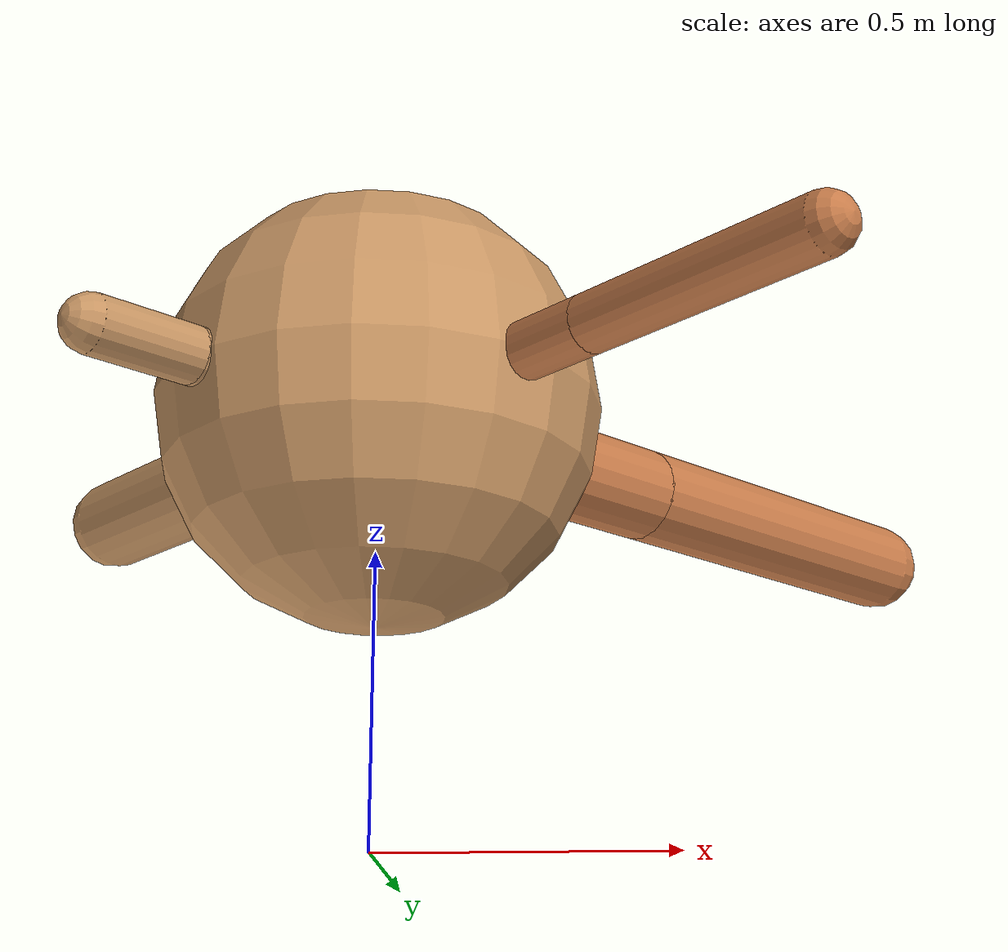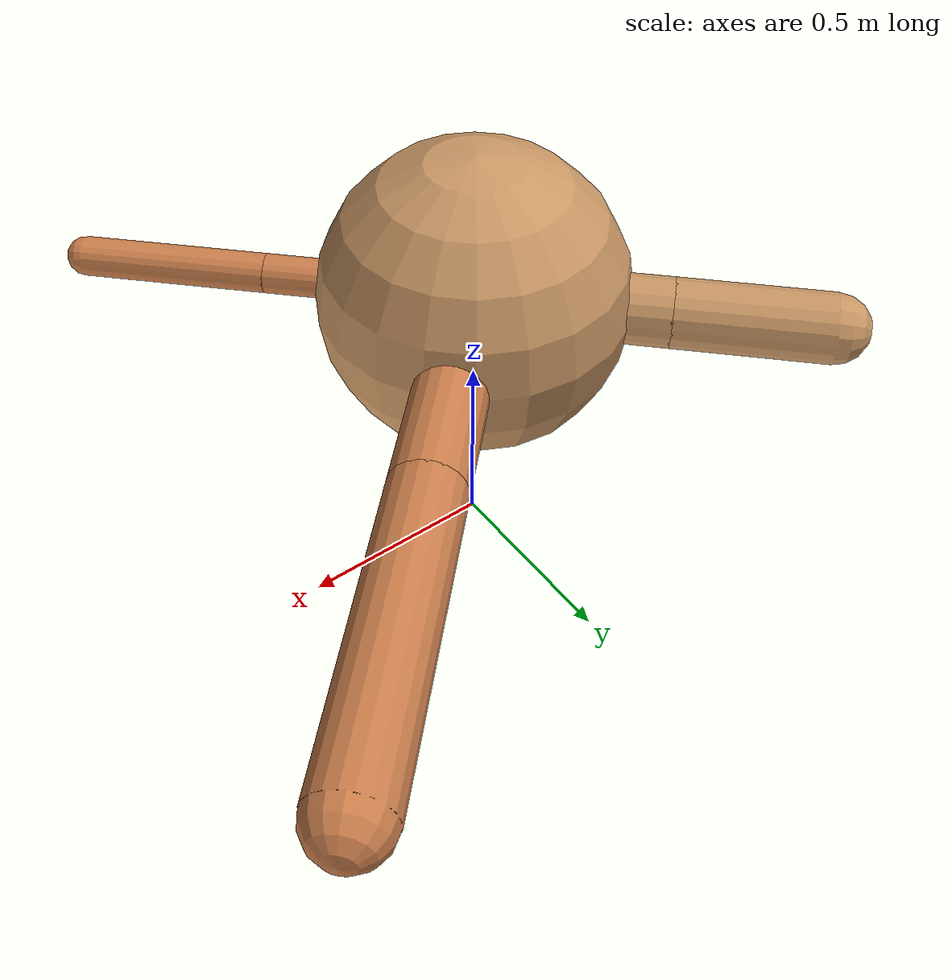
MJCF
<?xml version="1.0" ?>
<mujoco model="ant">

	<compiler angle="degree" coordinate="local" inertiafromgeom="true"/>

	<option integrator="RK4" timestep="0.01"/>

	<custom>

		<numeric data="0.0 0.0 0.55 1.0 0.0 0.0 0.0 0.0 1.0 0.0 -1.0 0.0 -1.0 0.0 1.0" name="init_qpos"/>

	</custom>

	<default>

		<joint armature="1" damping="1" limited="true"/>

		<geom conaffinity="0" condim="3" density="5.0" friction="1.5 0.1 0.1" margin="0.01" rgba="0.8 0.6 0.4 1"/>

	</default>

	<worldbody>

		<body name="torso" pos="0 0 0.75">

			<geom name="torso_geom" pos="0 0 0" size="0.3809115109678126" type="sphere"/>

			<!--joint armature="0" damping="0" limited="false" margin="0.01" name="root" pos="0 0 0" type="free"/-->

			<body name="front_left_leg" pos="0 0 0">

				<geom fromto="0 0 0 0.2 0.2 0" name="aux_1_geom" size="0.087155690770804" type="capsule" rgba=".8 .5 .3 1"/>

				<body name="aux_1" pos="0.2 0.2 0">

					<joint axis="0 0 1" name="hip_1" pos="0.0 0.0 0.0" range="-40 40" type="hinge"/>

					<geom fromto="0 0 0 0.25643127070412913 0.25643127070412913 0" name="left_leg_geom" size="0.087155690770804" type="capsule" rgba=".8 .5 .3 1"/>

					<body pos="0.25643127070412913 0.25643127070412913 0" name="front_left_foot">

						<joint axis="-1 1 0" name="ankle_1" pos="0.0 0.0 0.0" range="30 100" type="hinge"/>

						<geom fromto="0 0 0 0.5128625414082583 0.5128625414082583 0" name="left_ankle_geom" size="0.087155690770804" type="capsule" rgba=".8 .5 .3 1"/>

					</body>

				</body>

			</body>

			<body name="front_right_leg" pos="0 0 0">

				<geom fromto="0 0 0 -0.2 0.2 0" name="aux_2_geom" size="0.08536051379107676" type="capsule"/>

				<body name="aux_2" pos="-0.2 0.2 0">

					<joint axis="0 0 1" name="hip_2" pos="0.0 0.0 0.0" range="-40 40" type="hinge"/>

					<geom fromto="0 0 0 -0.13209087344625023 0.13209087344625023 0" name="right_leg_geom" size="0.08536051379107676" type="capsule"/>

					<body pos="-0.13209087344625023 0.13209087344625023 0" name="front_right_foot">

						<joint axis="1 1 0" name="ankle_2" pos="0.0 0.0 0.0" range="-100 -30" type="hinge"/>

						<geom fromto="0 0 0 -0.26418174689250046 0.26418174689250046 0" name="right_ankle_geom" size="0.08536051379107676" type="capsule"/>

					</body>

				</body>

			</body>

			<body name="left_back_leg" pos="0 0 0">

				<geom fromto="0 0 0 -0.2 -0.2 0" name="aux_3_geom" size="0.049004106082425516" type="capsule"/>

				<body name="aux_3" pos="-0.2 -0.2 0">

					<joint axis="0 0 1" name="hip_3" pos="0.0 0.0 0.0" range="-40 40" type="hinge"/>

					<geom fromto="0 0 0 -0.06624036068249166 -0.06624036068249166 0" name="back_leg_geom" size="0.049004106082425516" type="capsule"/>

					<body pos="-0.06624036068249166 -0.06624036068249166 0" name="left_back_foot">

						<joint axis="-1 1 0" name="ankle_3" pos="0.0 0.0 0.0" range="-100 -30" type="hinge"/>

						<geom fromto="0 0 0 -0.13248072136498332 -0.13248072136498332 0" name="third_ankle_geom" size="0.049004106082425516" type="capsule"/>

					</body>

				</body>

			</body>

			<body name="right_back_leg" pos="0 0 0">

				<geom fromto="0 0 0 0.2 -0.2 0" name="aux_4_geom" size="0.0485488614525618" type="capsule" rgba=".8 .5 .3 1"/>

				<body name="aux_4" pos="0.2 -0.2 0">

					<joint axis="0 0 1" name="hip_4" pos="0.0 0.0 0.0" range="-40 40" type="hinge"/>

					<geom fromto="0 0 0 0.16187650920255145 -0.16187650920255145 0" name="rightback_leg_geom" size="0.0485488614525618" type="capsule" rgba=".8 .5 .3 1"/>

					<body pos="0.16187650920255145 -0.16187650920255145 0" name="right_back_foot">

						<joint axis="1 1 0" name="ankle_4" pos="0.0 0.0 0.0" range="30 100" type="hinge"/>

						<geom fromto="0 0 0 0.3237530184051029 -0.3237530184051029 0" name="fourth_ankle_geom" size="0.0485488614525618" type="capsule" rgba=".8 .5 .3 1"/>

					</body>

				</body>

			</body>

		</body>

	</worldbody>

	<actuator>

		<motor ctrllimited="true" ctrlrange="-1.0 1.0" joint="hip_4" gear="150"/>

		<motor ctrllimited="true" ctrlrange="-1.0 1.0" joint="ankle_4" gear="150"/>

		<motor ctrllimited="true" ctrlrange="-1.0 1.0" joint="hip_1" gear="150"/>

		<motor ctrllimited="true" ctrlrange="-1.0 1.0" joint="ankle_1" gear="150"/>

		<motor ctrllimited="true" ctrlrange="-1.0 1.0" joint="hip_2" gear="150"/>

		<motor ctrllimited="true" ctrlrange="-1.0 1.0" joint="ankle_2" gear="150"/>

		<motor ctrllimited="true" ctrlrange="-1.0 1.0" joint="hip_3" gear="150"/>

		<motor ctrllimited="true" ctrlrange="-1.0 1.0" joint="ankle_3" gear="150"/>

	</actuator>

</mujoco>
